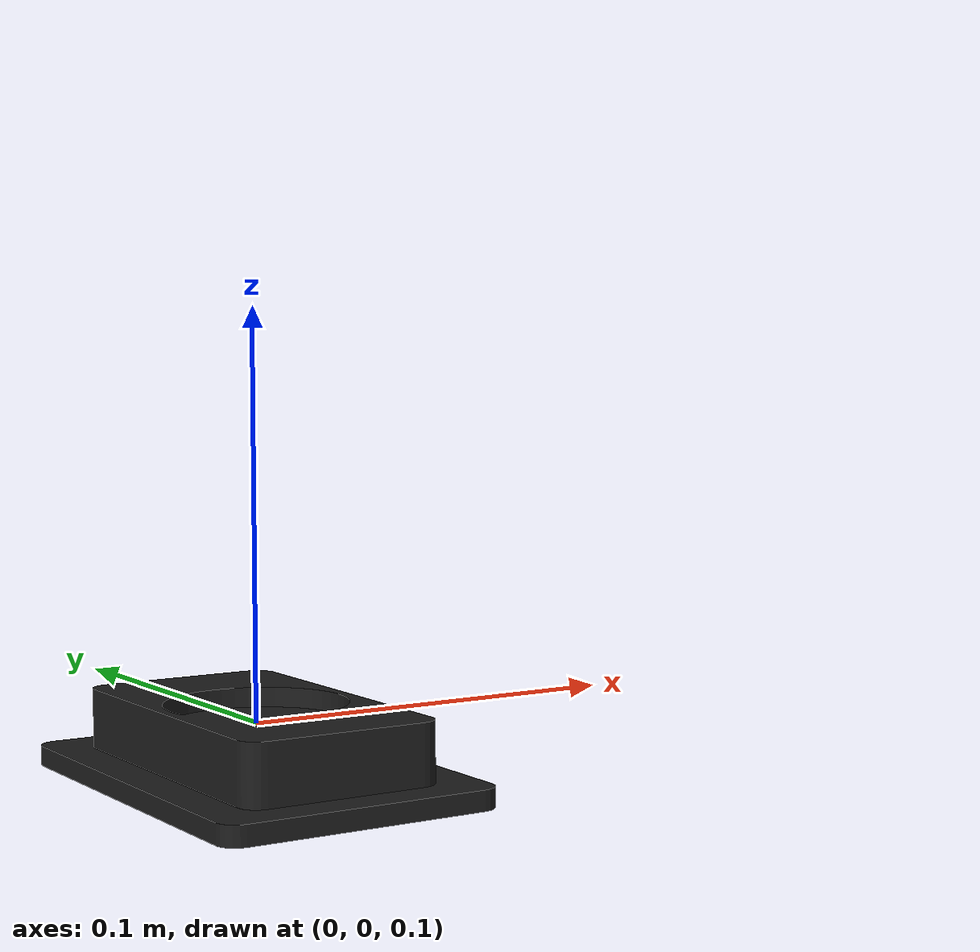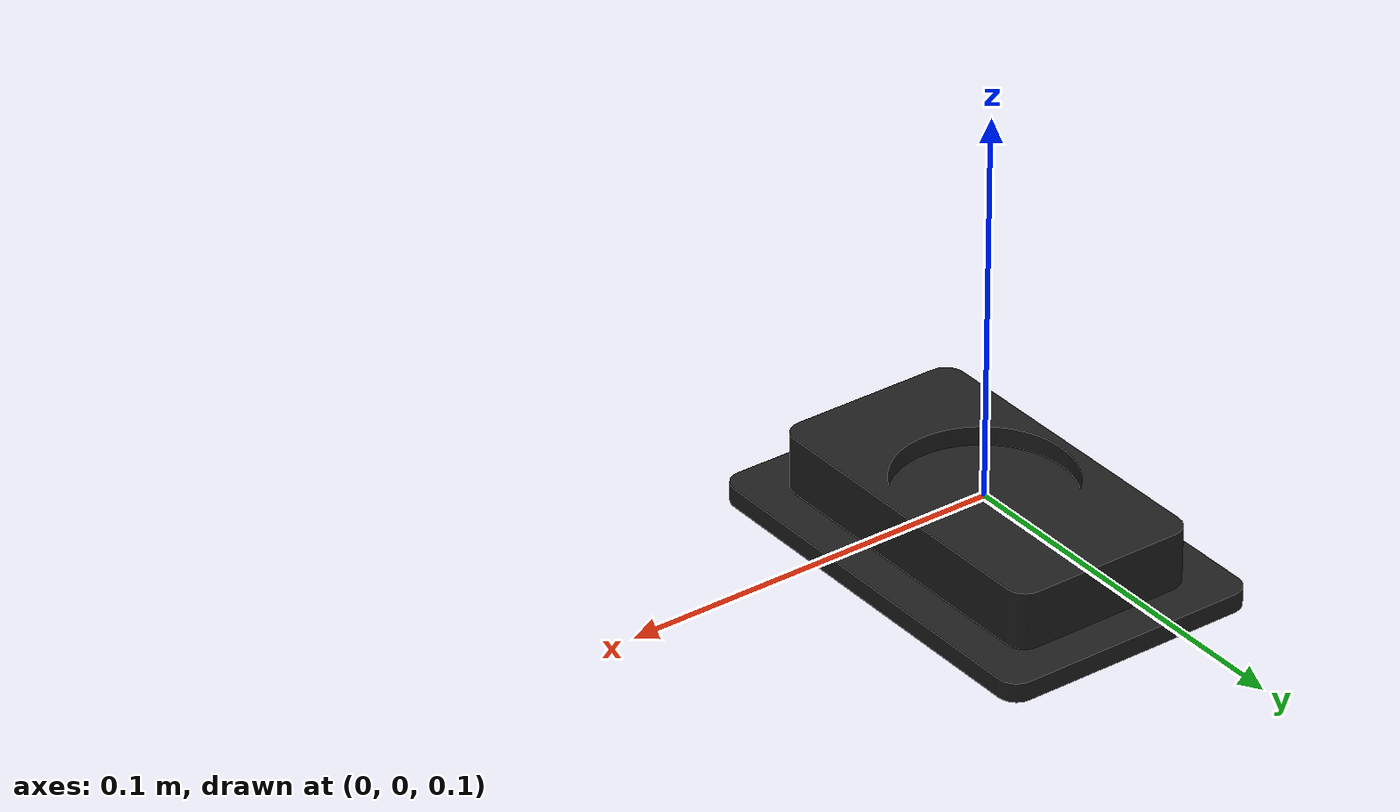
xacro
<?xml version="1.0"?>
<robot xmlns:xacro="http://www.ros.org/wiki/xacro" name="robot">

  <xacro:include filename="$(find description2)/urdf/robot_core_alfredo.xacro"/>

  <xacro:property name="distancex" value="0" />
  <xacro:property name="distancey" value="0" />
  <xacro:property name="distancez" value= "0"/>
   <!-- sensor joint -->
   <joint name="fixed" type="fixed">
    <parent link="base_link"/>
    <child link="sensor"/>
    <origin xyz = "0.23 0 0.17"/>
  </joint>

 <!-- sensor Link -->
  <link name="sensor">
    <visual>
      <origin xyz="0 0 ${distancez/2}" rpy="0 0 0"/>
      <geometry>
        <box size="${distancex} ${distancey} ${distancez}"/>
      </geometry>
      <material name="orange"/>
    </visual>

    <collision>
      <origin xyz="0 0 ${distancez/2}" rpy="0 0 0"/>
      <geometry>
        <box size="${distancex} ${distancey} ${distancez}"/>
      </geometry>
    </collision>

    <inertial>
      <origin xyz="0 0 ${distancez/2}" rpy="0 0 0"/>
      <mass value="1"/>
      <inertia
        ixx="1.0" ixy="0.0" ixz="0.0"
        iyy="1.0" iyz="0.0"
        izz="1.0"/>
    </inertial>
  </link>

</robot>

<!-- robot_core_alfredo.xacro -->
<robot xmlns:xacro="http://www.ros.org/wiki/xacro" >

<!--BASE LINK-->

<link name="base_link">
</link>

<!--CHASSIS LINK-->
<joint name="chassis_joint" type="fixed">
    <parent link = "base_link"/>
    <child link = "Chassis"/>
    <origin xyz ="0 0 0"/>
</joint>

<link name = "Chassis">
<visual>
    <origin xyz= "0 0 0.085"/>
    <geometry>
        <mesh filename= "package://description2/meshes/base.stl" scale="0.001 0.001 0.001"/>
    </geometry>
    <material name ="black"/>
</visual>
<collision>
    <origin xyz= "0 0 0.085"/>
    <geometry>
        <box size = "0.69804 0.325 0.17 "/>

    </geometry>
    <material name ="black"/>
    <inertial>
        <mass value="19.928" />
        <origin xyz="0 0 0" />
				<inertia ixx="0.286" ixy="0.0" ixz="0.0"
               iyy="1.109" iyz="0.0"
               izz="1.227" />
      </inertial>
</collision>
</link>

<gazebo reference = "chassis">
    <material>
        Gazebo/White
    </material>
</gazebo>

</robot>
